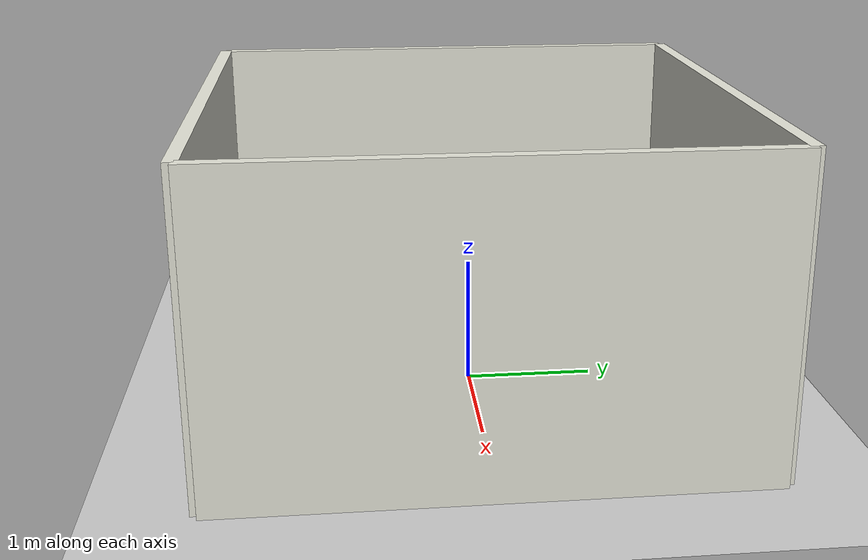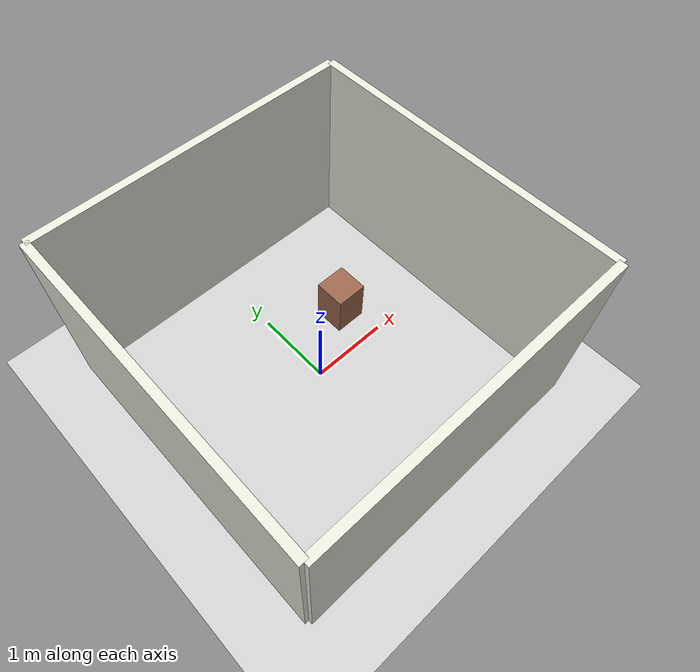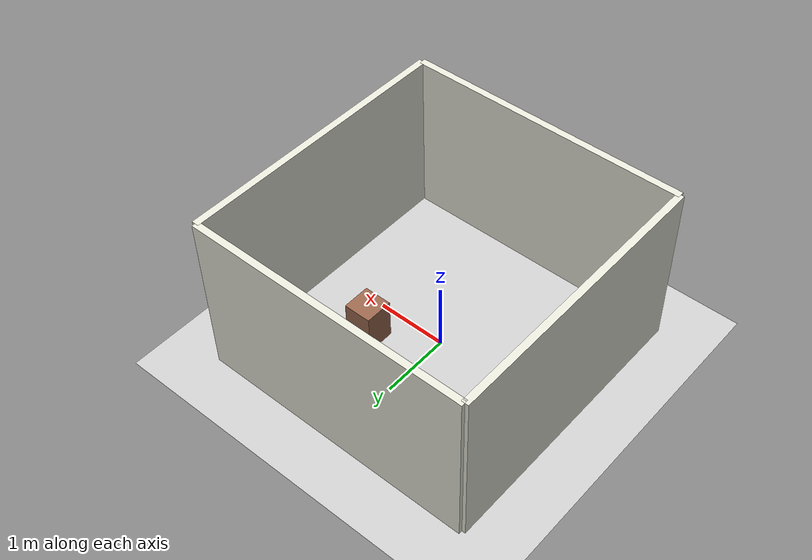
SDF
<?xml version="1.0"?>
<sdf version="1.9">
  <world name="floorscan_room">
    <physics name="1ms" type="ode">
      <max_step_size>0.001</max_step_size>
      <real_time_factor>1.0</real_time_factor>
    </physics>
    <plugin filename="gz-sim-physics-system" name="gz::sim::systems::Physics"></plugin>
    <plugin filename="gz-sim-user-commands-system" name="gz::sim::systems::UserCommands"></plugin>
    <plugin filename="gz-sim-scene-broadcaster-system" name="gz::sim::systems::SceneBroadcaster"></plugin>
    <plugin filename="gz-sim-sensors-system" name="gz::sim::systems::Sensors">
      <render_engine>ogre2</render_engine>
    </plugin>

    <light type="directional" name="sun">
      <cast_shadows>true</cast_shadows>
      <pose>0 0 10 0 0 0</pose>
      <diffuse>0.8 0.8 0.8 1</diffuse>
      <specular>0.2 0.2 0.2 1</specular>
      <direction>-0.5 0.1 -0.9</direction>
    </light>

    <model name="ground_plane">
      <static>true</static>
      <link name="link">
        <collision name="collision">
          <geometry><plane><normal>0 0 1</normal><size>100 100</size></plane></geometry>
        </collision>
        <visual name="visual">
          <geometry><plane><normal>0 0 1</normal><size>100 100</size></plane></geometry>
          <material><ambient>0.8 0.8 0.8 1</ambient><diffuse>0.8 0.8 0.8 1</diffuse></material>
        </visual>
      </link>
    </model>

    <!-- ===================== ROOM: 4m x 4m, walls 2.4m high, 0.1m thick ===================== -->

    <model name="wall_north">
      <static>true</static>
      <pose>0 2 1.2 0 0 0</pose>
      <link name="link">
        <collision name="collision"><geometry><box><size>4 0.1 2.4</size></box></geometry></collision>
        <visual name="visual">
          <geometry><box><size>4 0.1 2.4</size></box></geometry>
          <material><ambient>0.9 0.9 0.85 1</ambient><diffuse>0.9 0.9 0.85 1</diffuse></material>
        </visual>
      </link>
    </model>

    <model name="wall_south">
      <static>true</static>
      <pose>0 -2 1.2 0 0 0</pose>
      <link name="link">
        <collision name="collision"><geometry><box><size>4 0.1 2.4</size></box></geometry></collision>
        <visual name="visual">
          <geometry><box><size>4 0.1 2.4</size></box></geometry>
          <material><ambient>0.9 0.9 0.85 1</ambient><diffuse>0.9 0.9 0.85 1</diffuse></material>
        </visual>
      </link>
    </model>

    <model name="wall_east">
      <static>true</static>
      <pose>2 0 1.2 0 0 1.5708</pose>
      <link name="link">
        <collision name="collision"><geometry><box><size>4 0.1 2.4</size></box></geometry></collision>
        <visual name="visual">
          <geometry><box><size>4 0.1 2.4</size></box></geometry>
          <material><ambient>0.9 0.9 0.85 1</ambient><diffuse>0.9 0.9 0.85 1</diffuse></material>
        </visual>
      </link>
    </model>

    <model name="wall_west">
      <static>true</static>
      <pose>-2 0 1.2 0 0 1.5708</pose>
      <link name="link">
        <collision name="collision"><geometry><box><size>4 0.1 2.4</size></box></geometry></collision>
        <visual name="visual">
          <geometry><box><size>4 0.1 2.4</size></box></geometry>
          <material><ambient>0.9 0.9 0.85 1</ambient><diffuse>0.9 0.9 0.85 1</diffuse></material>
        </visual>
      </link>
    </model>

    <!-- One interior obstacle, like a piece of furniture -->
    <model name="obstacle_box">
      <static>true</static>
      <pose>0.8 0.5 0.3 0 0 0</pose>
      <link name="link">
        <collision name="collision"><geometry><box><size>0.4 0.4 0.6</size></box></geometry></collision>
        <visual name="visual">
          <geometry><box><size>0.4 0.4 0.6</size></box></geometry>
          <material><ambient>0.6 0.4 0.3 1</ambient><diffuse>0.6 0.4 0.3 1</diffuse></material>
        </visual>
      </link>
    </model>

  </world>
</sdf>
